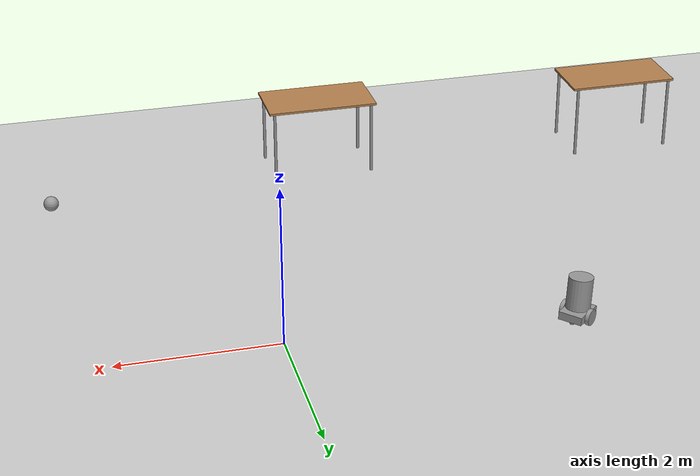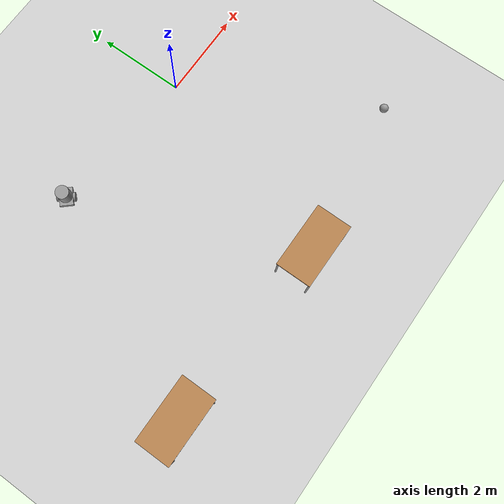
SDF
<sdf version="1.6">
 <world name="default">
  <model name="ground_plane">
   <static>1</static>
   <link name="link">
    <collision name="collision">
     <geometry><plane><normal>0 0 1</normal><size>100 100</size></plane></geometry>
     <surface><friction><ode><mu>100</mu><mu2>50</mu2></ode></friction></surface>
    </collision>
    <visual name="visual">
     <cast_shadows>0</cast_shadows>
     <geometry><plane><normal>0 0 1</normal><size>100 100</size></plane></geometry>
     <material>
      <script><uri>file://media/materials/scripts/gazebo.material</uri><name>Gazebo/Grey</name></script>
     </material>
    </visual>
   </link>
  </model>
  <model name="table_0">
   <static>1</static>
   <link name="link">
    <collision name="surface">
     <pose>0 0 1 0 -0 0</pose>
     <geometry><box><size>1.5 0.8 0.03</size></box></geometry>
     <surface><friction><ode><mu>0.6</mu><mu2>0.6</mu2></ode></friction></surface>
    </collision>
    <visual name="visual1">
     <pose>0 0 1 0 -0 0</pose>
     <geometry><box><size>1.5 0.8 0.03</size></box></geometry>
     <material>
      <script><uri>file://media/materials/scripts/gazebo.material</uri><name>Gazebo/Wood</name></script>
     </material>
    </visual>
    <collision name="front_left_leg">
     <pose>0.68 0.38 0.5 0 -0 0</pose>
     <geometry><cylinder><radius>0.02</radius><length>1</length></cylinder></geometry>
    </collision>
    <visual name="front_left_leg">
     <pose>0.68 0.38 0.5 0 -0 0</pose>
     <geometry><cylinder><radius>0.02</radius><length>1</length></cylinder></geometry>
     <material>
      <script><uri>file://media/materials/scripts/gazebo.material</uri><name>Gazebo/Grey</name></script>
     </material>
    </visual>
    <collision name="front_right_leg">
     <pose>0.68 -0.38 0.5 0 -0 0</pose>
     <geometry><cylinder><radius>0.02</radius><length>1</length></cylinder></geometry>
    </collision>
    <visual name="front_right_leg">
     <pose>0.68 -0.38 0.5 0 -0 0</pose>
     <geometry><cylinder><radius>0.02</radius><length>1</length></cylinder></geometry>
     <material>
      <script><uri>file://media/materials/scripts/gazebo.material</uri><name>Gazebo/Grey</name></script>
     </material>
    </visual>
    <collision name="back_right_leg">
     <pose>-0.68 -0.38 0.5 0 -0 0</pose>
     <geometry><cylinder><radius>0.02</radius><length>1</length></cylinder></geometry>
    </collision>
    <visual name="back_right_leg">
     <pose>-0.68 -0.38 0.5 0 -0 0</pose>
     <geometry><cylinder><radius>0.02</radius><length>1</length></cylinder></geometry>
     <material>
      <script><uri>file://media/materials/scripts/gazebo.material</uri><name>Gazebo/Grey</name></script>
     </material>
    </visual>
    <collision name="back_left_leg">
     <pose>-0.68 0.38 0.5 0 -0 0</pose>
     <geometry><cylinder><radius>0.02</radius><length>1</length></cylinder></geometry>
    </collision>
    <visual name="back_left_leg">
     <pose>-0.68 0.38 0.5 0 -0 0</pose>
     <geometry><cylinder><radius>0.02</radius><length>1</length></cylinder></geometry>
     <material>
      <script><uri>file://media/materials/scripts/gazebo.material</uri><name>Gazebo/Grey</name></script>
     </material>
    </visual>
   </link>
   <pose>-5.81265 -4.3986 0 0 -0 0</pose>
  </model>
  <model name="table_2">
   <static>1</static>
   <link name="link">
    <collision name="surface">
     <pose>0 0 1 0 -0 0</pose>
     <geometry><box><size>1.5 0.8 0.03</size></box></geometry>
     <surface><friction><ode><mu>0.6</mu><mu2>0.6</mu2></ode></friction></surface>
    </collision>
    <visual name="visual1">
     <pose>0 0 1 0 -0 0</pose>
     <geometry><box><size>1.5 0.8 0.03</size></box></geometry>
     <material>
      <script><uri>file://media/materials/scripts/gazebo.material</uri><name>Gazebo/Wood</name></script>
     </material>
    </visual>
    <collision name="front_left_leg">
     <pose>0.68 0.38 0.5 0 -0 0</pose>
     <geometry><cylinder><radius>0.02</radius><length>1</length></cylinder></geometry>
    </collision>
    <visual name="front_left_leg">
     <pose>0.68 0.38 0.5 0 -0 0</pose>
     <geometry><cylinder><radius>0.02</radius><length>1</length></cylinder></geometry>
     <material>
      <script><uri>file://media/materials/scripts/gazebo.material</uri><name>Gazebo/Grey</name></script>
     </material>
    </visual>
    <collision name="front_right_leg">
     <pose>0.68 -0.38 0.5 0 -0 0</pose>
     <geometry><cylinder><radius>0.02</radius><length>1</length></cylinder></geometry>
    </collision>
    <visual name="front_right_leg">
     <pose>0.68 -0.38 0.5 0 -0 0</pose>
     <geometry><cylinder><radius>0.02</radius><length>1</length></cylinder></geometry>
     <material>
      <script><uri>file://media/materials/scripts/gazebo.material</uri><name>Gazebo/Grey</name></script>
     </material>
    </visual>
    <collision name="back_right_leg">
     <pose>-0.68 -0.38 0.5 0 -0 0</pose>
     <geometry><cylinder><radius>0.02</radius><length>1</length></cylinder></geometry>
    </collision>
    <visual name="back_right_leg">
     <pose>-0.68 -0.38 0.5 0 -0 0</pose>
     <geometry><cylinder><radius>0.02</radius><length>1</length></cylinder></geometry>
     <material>
      <script><uri>file://media/materials/scripts/gazebo.material</uri><name>Gazebo/Grey</name></script>
     </material>
    </visual>
    <collision name="back_left_leg">
     <pose>-0.68 0.38 0.5 0 -0 0</pose>
     <geometry><cylinder><radius>0.02</radius><length>1</length></cylinder></geometry>
    </collision>
    <visual name="back_left_leg">
     <pose>-0.68 0.38 0.5 0 -0 0</pose>
     <geometry><cylinder><radius>0.02</radius><length>1</length></cylinder></geometry>
     <material>
      <script><uri>file://media/materials/scripts/gazebo.material</uri><name>Gazebo/Grey</name></script>
     </material>
    </visual>
   </link>
   <pose>-1.49827 -4.63282 0 0 -0 0</pose>
  </model>
  <model name="my_new_humaniod">
   <link name="link_0">
    <pose>-0.003742 0.003896 0.007981 0 -0 0</pose>
    <inertial>
     <mass>1</mass>
     <inertia>
      <ixx>0.166667</ixx>
      <ixy>0</ixy>
      <ixz>0</ixz>
      <iyy>0.166667</iyy>
      <iyz>0</iyz>
      <izz>0.166667</izz>
     </inertia>
     <pose>0 0 0.5 0 -0 0</pose>
    </inertial>
    <visual name="visual">
     <geometry><box><size>0.3 0.4 0.1</size></box></geometry>
     <material>
      <lighting>1</lighting>
      <script><uri>file://media/materials/scripts/gazebo.material</uri><name>Gazebo/Grey</name></script>
      <ambient>0.2 0.2 0.2 0.2</ambient>
      <diffuse>0.2 0.2 0.2 0.2</diffuse>
      <specular>0.8 0.8 0.8 0.8</specular>
      <emissive>0.1 0.9 0.1 1</emissive>
      <shader type="vertex"><normal_map>__default__</normal_map></shader>
     </material>
    </visual>
    <collision name="collision">
     <geometry><box><size>0.3 0.4 0.1</size></box></geometry>
     <surface>
      <friction>
       <ode><mu>1</mu><mu2>1</mu2><fdir1>0 0 0</fdir1><slip1>0</slip1><slip2>0</slip2></ode>
       <torsional>
        <coefficient>1</coefficient>
        <patch_radius>0</patch_radius>
        <surface_radius>0</surface_radius>
        <use_patch_radius>1</use_patch_radius>
        <ode><slip>0</slip></ode>
       </torsional>
      </friction>
      <bounce><restitution_coefficient>0</restitution_coefficient><threshold>1e+06</threshold></bounce>
      <contact>
       <collide_without_contact>0</collide_without_contact>
       <collide_without_contact_bitmask>1</collide_without_contact_bitmask>
       <collide_bitmask>1</collide_bitmask>
       <ode>
        <soft_cfm>0</soft_cfm>
        <soft_erp>0.2</soft_erp>
        <kp>1e+13</kp>
        <kd>1</kd>
        <max_vel>0.01</max_vel>
        <min_depth>0</min_depth>
       </ode>
       <bullet>
        <split_impulse>1</split_impulse>
        <split_impulse_penetration_threshold>-0.01</split_impulse_penetration_threshold>
        <soft_cfm>0</soft_cfm>
        <soft_erp>0.2</soft_erp>
        <kp>1e+13</kp>
        <kd>1</kd>
       </bullet>
      </contact>
     </surface>
    </collision>
   </link>
   <link name="link_1">
    <pose>0.175062 -0.016193 0.007981 0 -0 0</pose>
    <inertial>
     <mass>1</mass>
     <inertia><ixx>0.145833</ixx><ixy>0</ixy><ixz>0</ixz><iyy>0.145833</iyy><iyz>0</iyz><izz>0.125</izz></inertia>
    </inertial>
    <visual name="visual">
     <pose>0 0 0 3.14159 1.56659 3.14159</pose>
     <geometry><cylinder><radius>0.1</radius><length>0.05</length></cylinder></geometry>
     <material>
      <lighting>1</lighting>
      <script><uri>file://media/materials/scripts/gazebo.material</uri><name>Gazebo/Grey</name></script>
      <ambient>0.2 0.2 0.2 0.2</ambient>
      <diffuse>0.2 0.2 0.2 0.2</diffuse>
      <specular>0.8 0.8 0.8 0.8</specular>
      <emissive>0.1 0.9 0.1 0.9</emissive>
      <shader type="vertex"><normal_map>__default__</normal_map></shader>
     </material>
    </visual>
    <collision name="collision">
     <pose>0 0 0 3.14159 1.56659 3.14159</pose>
     <geometry><cylinder><radius>0.1</radius><length>0.05</length></cylinder></geometry>
     <surface>
      <friction>
       <ode><mu>1</mu><mu2>1</mu2><fdir1>0 0 0</fdir1><slip1>0</slip1><slip2>0</slip2></ode>
       <torsional>
        <coefficient>1</coefficient>
        <patch_radius>0</patch_radius>
        <surface_radius>0</surface_radius>
        <use_patch_radius>1</use_patch_radius>
        <ode><slip>0</slip></ode>
       </torsional>
      </friction>
      <bounce><restitution_coefficient>0</restitution_coefficient><threshold>1e+06</threshold></bounce>
      <contact>
       <collide_without_contact>0</collide_without_contact>
       <collide_without_contact_bitmask>1</collide_without_contact_bitmask>
       <collide_bitmask>1</collide_bitmask>
       <ode>
        <soft_cfm>0</soft_cfm>
        <soft_erp>0.2</soft_erp>
        <kp>1e+13</kp>
        <kd>1</kd>
        <max_vel>0.01</max_vel>
        <min_depth>0</min_depth>
       </ode>
       <bullet>
        <split_impulse>1</split_impulse>
        <split_impulse_penetration_threshold>-0.01</split_impulse_penetration_threshold>
        <soft_cfm>0</soft_cfm>
        <soft_erp>0.2</soft_erp>
        <kp>1e+13</kp>
        <kd>1</kd>
       </bullet>
      </contact>
     </surface>
    </collision>
   </link>
   <link name="link_1_clone">
    <pose>-0.183416 0.021929 0.007981 0 -0 0</pose>
    <inertial>
     <mass>1</mass>
     <inertia><ixx>0.145833</ixx><ixy>0</ixy><ixz>0</ixz><iyy>0.145833</iyy><iyz>0</iyz><izz>0.125</izz></inertia>
    </inertial>
    <visual name="visual">
     <pose>0 0 0 3.14159 1.56659 3.14159</pose>
     <geometry><cylinder><radius>0.1</radius><length>0.05</length></cylinder></geometry>
     <material>
      <lighting>1</lighting>
      <script><uri>file://media/materials/scripts/gazebo.material</uri><name>Gazebo/Grey</name></script>
      <ambient>0.2 0.2 0.2 0.2</ambient>
      <diffuse>0.2 0.2 0.2 0.2</diffuse>
      <specular>0.8 0.8 0.8 0.8</specular>
      <emissive>0.1 0.9 0.1 1</emissive>
      <shader type="vertex"><normal_map>__default__</normal_map></shader>
     </material>
    </visual>
    <collision name="collision">
     <pose>0 0 0 3.14159 1.56659 3.14159</pose>
     <geometry><cylinder><radius>0.1</radius><length>0.05</length></cylinder></geometry>
     <surface>
      <friction>
       <ode><mu>1</mu><mu2>1</mu2><fdir1>0 0 0</fdir1><slip1>0</slip1><slip2>0</slip2></ode>
       <torsional>
        <coefficient>1</coefficient>
        <patch_radius>0</patch_radius>
        <surface_radius>0</surface_radius>
        <use_patch_radius>1</use_patch_radius>
        <ode><slip>0</slip></ode>
       </torsional>
      </friction>
      <bounce><restitution_coefficient>0</restitution_coefficient><threshold>1e+06</threshold></bounce>
      <contact>
       <collide_without_contact>0</collide_without_contact>
       <collide_without_contact_bitmask>1</collide_without_contact_bitmask>
       <collide_bitmask>1</collide_bitmask>
       <ode>
        <soft_cfm>0</soft_cfm>
        <soft_erp>0.2</soft_erp>
        <kp>1e+13</kp>
        <kd>1</kd>
        <max_vel>0.01</max_vel>
        <min_depth>0</min_depth>
       </ode>
       <bullet>
        <split_impulse>1</split_impulse>
        <split_impulse_penetration_threshold>-0.01</split_impulse_penetration_threshold>
        <soft_cfm>0</soft_cfm>
        <soft_erp>0.2</soft_erp>
        <kp>1e+13</kp>
        <kd>1</kd>
       </bullet>
      </contact>
     </surface>
    </collision>
   </link>
   <link name="link_2">
    <pose>0.011798 -0.146104 -0.044117 0 -0 0</pose>
    <inertial>
     <mass>1</mass>
     <inertia><ixx>0.1</ixx><ixy>0</ixy><ixz>0</ixz><iyy>0.1</iyy><iyz>0</iyz><izz>0.1</izz></inertia>
    </inertial>
    <visual name="visual">
     <geometry><sphere><radius>0.042</radius></sphere></geometry>
     <material>
      <lighting>1</lighting>
      <script><uri>file://media/materials/scripts/gazebo.material</uri><name>Gazebo/Grey</name></script>
      <ambient>0.3 0.3 0.3 1</ambient>
      <diffuse>0.7 0.7 0.7 1</diffuse>
      <specular>0.01 0.01 0.01 1</specular>
      <emissive>0 0 0 1</emissive>
      <shader type="vertex"><normal_map>__default__</normal_map></shader>
     </material>
    </visual>
    <collision name="collision">
     <geometry><sphere><radius>0.042</radius></sphere></geometry>
     <surface>
      <friction>
       <ode><mu>1</mu><mu2>1</mu2><fdir1>0 0 0</fdir1><slip1>0</slip1><slip2>0</slip2></ode>
       <torsional>
        <coefficient>1</coefficient>
        <patch_radius>0</patch_radius>
        <surface_radius>0</surface_radius>
        <use_patch_radius>1</use_patch_radius>
        <ode><slip>0</slip></ode>
       </torsional>
      </friction>
      <bounce><restitution_coefficient>0</restitution_coefficient><threshold>1e+06</threshold></bounce>
      <contact>
       <collide_without_contact>0</collide_without_contact>
       <collide_without_contact_bitmask>1</collide_without_contact_bitmask>
       <collide_bitmask>1</collide_bitmask>
       <ode>
        <soft_cfm>0</soft_cfm>
        <soft_erp>0.2</soft_erp>
        <kp>1e+13</kp>
        <kd>1</kd>
        <max_vel>0.01</max_vel>
        <min_depth>0</min_depth>
       </ode>
       <bullet>
        <split_impulse>1</split_impulse>
        <split_impulse_penetration_threshold>-0.01</split_impulse_penetration_threshold>
        <soft_cfm>0</soft_cfm>
        <soft_erp>0.2</soft_erp>
        <kp>1e+13</kp>
        <kd>1</kd>
       </bullet>
      </contact>
     </surface>
    </collision>
   </link>
   <link name="link_2_clone">
    <pose>-0.002185 0.153896 -0.042913 0 -0 0</pose>
    <inertial>
     <mass>1</mass>
     <inertia><ixx>0.1</ixx><ixy>0</ixy><ixz>0</ixz><iyy>0.1</iyy><iyz>0</iyz><izz>0.1</izz></inertia>
    </inertial>
    <visual name="visual">
     <geometry><sphere><radius>0.042</radius></sphere></geometry>
     <material>
      <lighting>1</lighting>
      <script><uri>file://media/materials/scripts/gazebo.material</uri><name>Gazebo/Grey</name></script>
      <ambient>0.3 0.3 0.3 1</ambient>
      <diffuse>0.7 0.7 0.7 1</diffuse>
      <specular>0.01 0.01 0.01 1</specular>
      <emissive>0 0 0 1</emissive>
      <shader type="vertex"><normal_map>__default__</normal_map></shader>
     </material>
    </visual>
    <collision name="collision">
     <geometry><sphere><radius>0.042</radius></sphere></geometry>
     <surface>
      <friction>
       <ode><mu>1</mu><mu2>1</mu2><fdir1>0 0 0</fdir1><slip1>0</slip1><slip2>0</slip2></ode>
       <torsional>
        <coefficient>1</coefficient>
        <patch_radius>0</patch_radius>
        <surface_radius>0</surface_radius>
        <use_patch_radius>1</use_patch_radius>
        <ode><slip>0</slip></ode>
       </torsional>
      </friction>
      <bounce><restitution_coefficient>0</restitution_coefficient><threshold>1e+06</threshold></bounce>
      <contact>
       <collide_without_contact>0</collide_without_contact>
       <collide_without_contact_bitmask>1</collide_without_contact_bitmask>
       <collide_bitmask>1</collide_bitmask>
       <ode>
        <soft_cfm>0</soft_cfm>
        <soft_erp>0.2</soft_erp>
        <kp>1e+13</kp>
        <kd>1</kd>
        <max_vel>0.01</max_vel>
        <min_depth>0</min_depth>
       </ode>
       <bullet>
        <split_impulse>1</split_impulse>
        <split_impulse_penetration_threshold>-0.01</split_impulse_penetration_threshold>
        <soft_cfm>0</soft_cfm>
        <soft_erp>0.2</soft_erp>
        <kp>1e+13</kp>
        <kd>1</kd>
       </bullet>
      </contact>
     </surface>
    </collision>
   </link>
   <link name="link_3">
    <pose>-0.003231 0.008705 0.280031 -0.033398 0.015473 0.327816</pose>
    <inertial>
     <mass>1</mass>
     <inertia><ixx>0.145833</ixx><ixy>0</ixy><ixz>0</ixz><iyy>0.145833</iyy><iyz>0</iyz><izz>0.125</izz></inertia>
    </inertial>
    <visual name="visual">
     <geometry><cylinder><radius>0.15</radius><length>0.4</length></cylinder></geometry>
     <material>
      <lighting>1</lighting>
      <script><uri>file://media/materials/scripts/gazebo.material</uri><name>Gazebo/Grey</name></script>
      <ambient>0.2 0.2 0.2 0.2</ambient>
      <diffuse>0.2 0.2 0.2 0.2</diffuse>
      <specular>0.2 0.2 0.2 0.2</specular>
      <emissive>0.1 0.9 0.1 1</emissive>
      <shader type="vertex"><normal_map>__default__</normal_map></shader>
     </material>
    </visual>
    <collision name="collision">
     <geometry><cylinder><radius>0.15</radius><length>0.4</length></cylinder></geometry>
     <surface>
      <friction>
       <ode><mu>1</mu><mu2>1</mu2><fdir1>0 0 0</fdir1><slip1>0</slip1><slip2>0</slip2></ode>
       <torsional>
        <coefficient>1</coefficient>
        <patch_radius>0</patch_radius>
        <surface_radius>0</surface_radius>
        <use_patch_radius>1</use_patch_radius>
        <ode><slip>0</slip></ode>
       </torsional>
      </friction>
      <bounce><restitution_coefficient>0</restitution_coefficient><threshold>1e+06</threshold></bounce>
      <contact>
       <collide_without_contact>0</collide_without_contact>
       <collide_without_contact_bitmask>1</collide_without_contact_bitmask>
       <collide_bitmask>1</collide_bitmask>
       <ode>
        <soft_cfm>0</soft_cfm>
        <soft_erp>0.2</soft_erp>
        <kp>1e+13</kp>
        <kd>1</kd>
        <max_vel>0.01</max_vel>
        <min_depth>0</min_depth>
       </ode>
       <bullet>
        <split_impulse>1</split_impulse>
        <split_impulse_penetration_threshold>-0.01</split_impulse_penetration_threshold>
        <soft_cfm>0</soft_cfm>
        <soft_erp>0.2</soft_erp>
        <kp>1e+13</kp>
        <kd>1</kd>
       </bullet>
      </contact>
     </surface>
    </collision>
   </link>
   <joint name="link_0_JOINT_11" type="fixed">
    <parent>link_0</parent>
    <child>link_3</child>
    <physics>
     <ode><limit><cfm>0</cfm><erp>0.2</erp></limit><suspension><cfm>0</cfm><erp>0.2</erp></suspension></ode>
    </physics>
   </joint>
   <joint name="link_0_JOINT_6" type="revolute">
    <parent>link_0</parent>
    <child>link_1_clone</child>
    <axis>
     <xyz>1 0 0</xyz>
     <use_parent_model_frame>0</use_parent_model_frame>
     <limit>
      <lower>-1.79769e+308</lower>
      <upper>1.79769e+308</upper>
      <effort>-1</effort>
      <velocity>-1</velocity>
     </limit>
     <dynamics>
      <spring_reference>0</spring_reference>
      <spring_stiffness>0</spring_stiffness>
      <damping>0</damping>
      <friction>0</friction>
     </dynamics>
    </axis>
    <physics>
     <ode><limit><cfm>0</cfm><erp>0.2</erp></limit><suspension><cfm>0</cfm><erp>0.2</erp></suspension></ode>
    </physics>
   </joint>
   <joint name="link_0_JOINT_7" type="revolute">
    <parent>link_0</parent>
    <child>link_1</child>
    <axis>
     <xyz>1 0 0</xyz>
     <use_parent_model_frame>0</use_parent_model_frame>
     <limit>
      <lower>-1.79769e+308</lower>
      <upper>1.79769e+308</upper>
      <effort>-1</effort>
      <velocity>-1</velocity>
     </limit>
     <dynamics>
      <spring_reference>0</spring_reference>
      <spring_stiffness>0</spring_stiffness>
      <damping>0</damping>
      <friction>0</friction>
     </dynamics>
    </axis>
    <physics>
     <ode><limit><cfm>0</cfm><erp>0.2</erp></limit><suspension><cfm>0</cfm><erp>0.2</erp></suspension></ode>
    </physics>
   </joint>
   <joint name="link_0_JOINT_8" type="ball">
    <parent>link_0</parent>
    <child>link_2</child>
    <physics>
     <ode><limit><cfm>0</cfm><erp>0.2</erp></limit><suspension><cfm>0</cfm><erp>0.2</erp></suspension></ode>
    </physics>
   </joint>
   <joint name="link_0_JOINT_9" type="ball">
    <parent>link_0</parent>
    <child>link_2_clone</child>
    <physics>
     <ode><limit><cfm>0</cfm><erp>0.2</erp></limit><suspension><cfm>0</cfm><erp>0.2</erp></suspension></ode>
    </physics>
   </joint>
   <static>0</static>
   <pose>-3.48883 0.357728 0.092219 -0.047872 0.004762 2.30457</pose>
  </model>
  <model name="my_ball">
   <link name="link_0">
    <inertial>
     <mass>1</mass>
     <inertia><ixx>0.1</ixx><ixy>0</ixy><ixz>0</ixz><iyy>0.1</iyy><iyz>0</iyz><izz>0.1</izz></inertia>
    </inertial>
    <visual name="visual">
     <geometry><sphere><radius>0.1</radius></sphere></geometry>
     <material>
      <lighting>1</lighting>
      <script><uri>file://media/materials/scripts/gazebo.material</uri><name>Gazebo/Grey</name></script>
      <ambient>1 1 1 1</ambient>
      <diffuse>1 1 1 1</diffuse>
      <specular>1 1 1 1</specular>
      <emissive>1 1 1 1</emissive>
      <shader type="vertex"><normal_map>__default__</normal_map></shader>
     </material>
    </visual>
    <collision name="collision">
     <geometry><sphere><radius>0.1</radius></sphere></geometry>
     <surface>
      <friction>
       <ode><mu>1</mu><mu2>1</mu2><fdir1>0 0 0</fdir1><slip1>0</slip1><slip2>0</slip2></ode>
       <torsional>
        <coefficient>1</coefficient>
        <patch_radius>0</patch_radius>
        <surface_radius>0</surface_radius>
        <use_patch_radius>1</use_patch_radius>
        <ode><slip>0</slip></ode>
       </torsional>
      </friction>
      <bounce><restitution_coefficient>0</restitution_coefficient><threshold>1e+06</threshold></bounce>
      <contact>
       <collide_without_contact>0</collide_without_contact>
       <collide_without_contact_bitmask>1</collide_without_contact_bitmask>
       <collide_bitmask>1</collide_bitmask>
       <ode>
        <soft_cfm>0</soft_cfm>
        <soft_erp>0.2</soft_erp>
        <kp>1e+13</kp>
        <kd>1</kd>
        <max_vel>0.01</max_vel>
        <min_depth>0</min_depth>
       </ode>
       <bullet>
        <split_impulse>1</split_impulse>
        <split_impulse_penetration_threshold>-0.01</split_impulse_penetration_threshold>
        <soft_cfm>0</soft_cfm>
        <soft_erp>0.2</soft_erp>
        <kp>1e+13</kp>
        <kd>1</kd>
       </bullet>
      </contact>
     </surface>
    </collision>
   </link>
   <static>0</static>
   <pose>2.28404 -4.1265 0.1 0 -0 0</pose>
  </model>
 </world>
</sdf>
